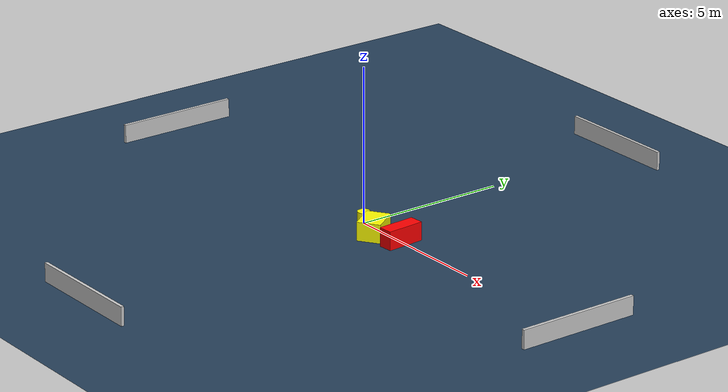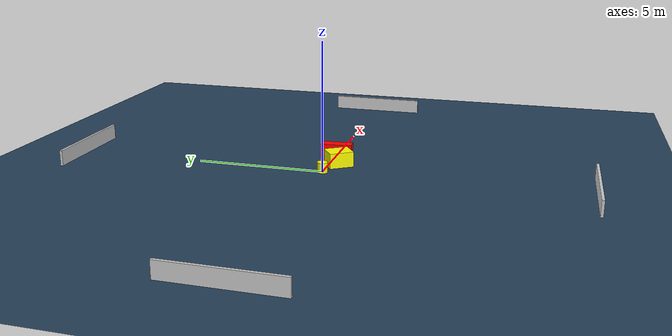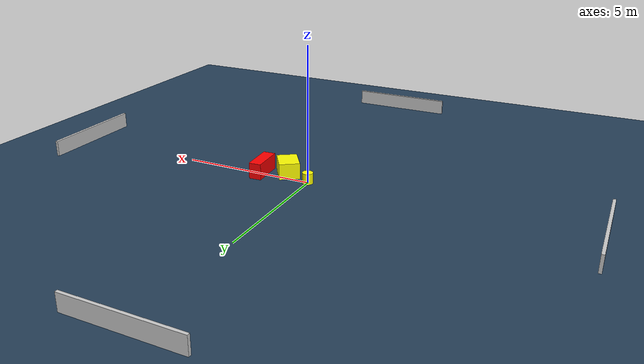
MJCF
<?xml version="1.0" ?>
<mujoco model="generated_environment">
  <option timestep="0.01" integrator="RK4" cone="elliptic"/>
  <default>
    <geom density="1"/>
  </default>
  <asset>
    <texture builtin="gradient" height="3072" name="skybox" rgb1="0.3 0.5 0.7" rgb2="0 0 0" type="skybox" width="512"/>
    <texture builtin="checker" height="300" name="groundplane" rgb1="0.2 0.3 0.4" rgb2="0.1 0.2 0.3" type="2d" width="300"/>
    <material name="groundplane" reflectance="0.2" texrepeat="5 5" texture="groundplane"/>
  </asset>
  <worldbody>
    <light dir="0 0 -1" directional="true" pos="0 0 1.5"/>
    <geom condim="3" friction="0.5 0.005 0.001" material="groundplane" name="floor" pos="0 0 0" size="0 0 0.05" type="plane"/>
    <body name="walls">
      <geom name="wall_1" condim="4" pos="-10.0 0.0 0.3" rgba="0.800000011920929 0.800000011920929 0.800000011920929 1.0" size="0.05 2.0 0.3" type="box"/>
      <geom name="wall_2" condim="4" pos="10.0 0.0 0.3" rgba="0.800000011920929 0.800000011920929 0.800000011920929 1.0" size="0.05 2.0 0.3" type="box"/>
      <geom name="wall_3" condim="4" pos="0.0 -10.0 0.3" rgba="0.800000011920929 0.800000011920929 0.800000011920929 1.0" size="2.0 0.05 0.3" type="box"/>
      <geom name="wall_4" condim="4" pos="0.0 10.0 0.3" rgba="0.800000011920929 0.800000011920929 0.800000011920929 1.0" size="2.0 0.05 0.3" type="box"/>
    </body>
    <body name="robot">
      <joint name="joint_x" type="slide" pos="0 0 0" axis="1 0 0"/>
      <joint name="joint_y" type="slide" pos="0 0 0" axis="0 1 0"/>
      <geom name="robot" type="cylinder" pos="0.0 0.0 0.2" size="0.2 0.2 0.0" mass="5.0" friction="1.0 0.005 0.0001" condim="4" rgba="1.0 1.0 0.0 1.0"/>
    </body>
    <body name="obstacle_1_movable">
      <geom name="obstacle_1_movable" condim="4" pos="0.99011073496098 -0.37801830454487473 0.3" euler="0 0 34.10190699999281" friction="0.0 0.005 0.001" rgba="1.0 1.0 0.0 1.0" size="0.3771873147900924 0.48099240914879016 0.3" type="box" mass="0.1"/>
      <joint type="free"/>
    </body>
    <body name="obstacle_2_static">
      <geom name="obstacle_2_static" condim="4" pos="1.898731449316813 -0.05635591421128534 0.3" euler="0 0 273.7387458953619" friction="0.0 0.005 0.001" rgba="1.0 0.0 0.0 1.0" size="0.6184110578336333 0.22929035649811774 0.3" type="box"/>
    </body>
  </worldbody>
  <actuator>
    <motor name="actuator_x" joint="joint_x" gear="1" ctrlrange="-1 1"/>
    <motor name="actuator_y" joint="joint_y" gear="1" ctrlrange="-1 1"/>
  </actuator>
</mujoco>
